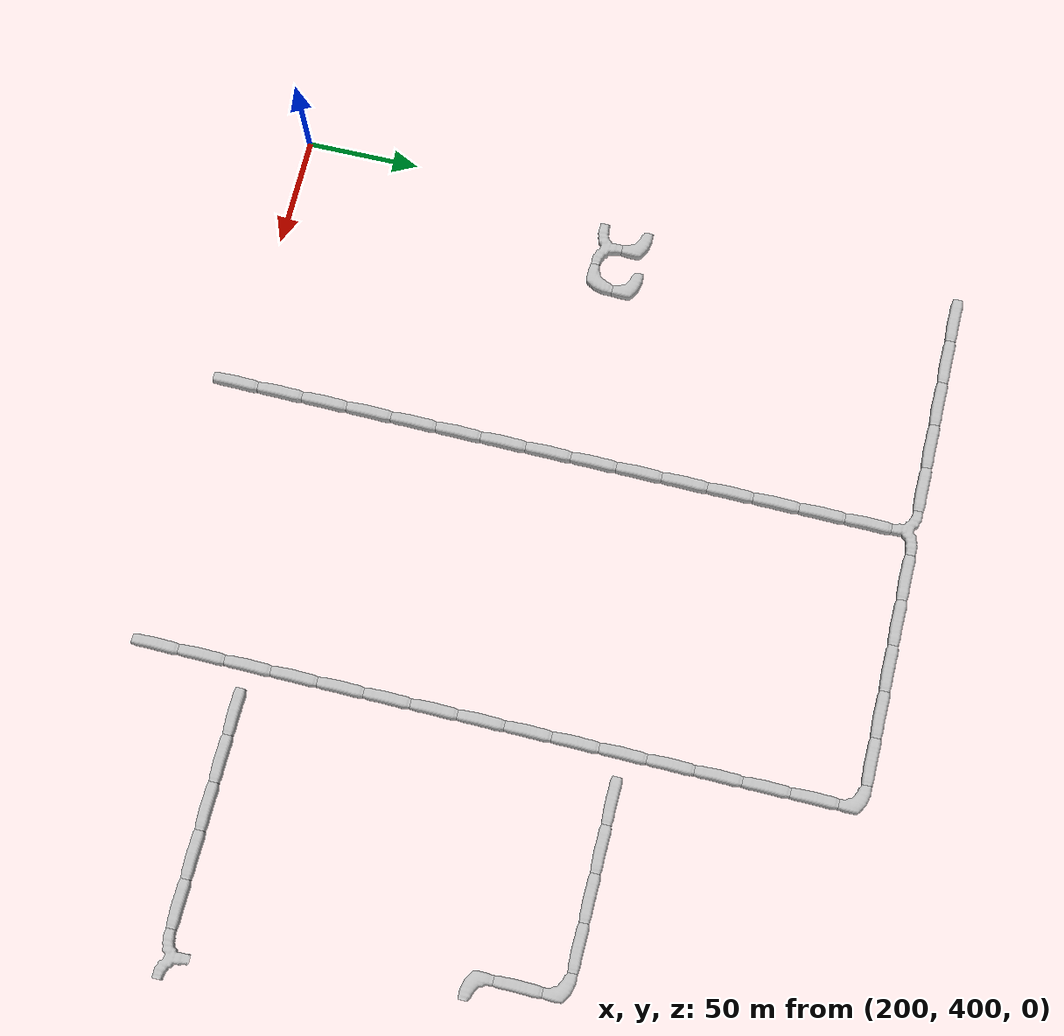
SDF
<sdf version="1.6">
 <world name="cave_32000_8">
  <include>
   <static>true</static>
   <name>cave_28_22</name>
   <pose>560 440 0 0 0 0.0</pose>
   <uri>model://cave_3way_20m</uri>
  </include>
  <include>
   <static>true</static>
   <name>cave_27_22</name>
   <pose>540 440 0 0 0 1.5707963267948966</pose>
   <uri>model://cave_straight_20m</uri>
  </include>
  <include>
   <static>true</static>
   <name>cave_26_22</name>
   <pose>520 440 0 0 0 1.5707963267948966</pose>
   <uri>model://cave_straight_20m</uri>
  </include>
  <include>
   <static>true</static>
   <name>cave_25_22</name>
   <pose>500 440 0 0 0 1.5707963267948966</pose>
   <uri>model://cave_straight_20m</uri>
  </include>
  <include>
   <static>true</static>
   <name>cave_24_22</name>
   <pose>480 440 0 0 0 1.5707963267948966</pose>
   <uri>model://cave_straight_20m</uri>
  </include>
  <include>
   <static>true</static>
   <name>cave_23_22</name>
   <pose>460 440 0 0 0 1.5707963267948966</pose>
   <uri>model://cave_straight_20m</uri>
  </include>
  <include>
   <static>true</static>
   <name>cave_27_28</name>
   <pose>540 560 0 0 0 0.0</pose>
   <uri>model://cave_L_20m</uri>
  </include>
  <include>
   <static>true</static>
   <name>cave_27_29</name>
   <pose>540 580 0 0 0 0.0</pose>
   <uri>model://cave_straight_20m</uri>
  </include>
  <include>
   <static>true</static>
   <name>cave_27_30</name>
   <pose>540 600 0 0 0 3.141592653589793</pose>
   <uri>model://cave_L_20m</uri>
  </include>
  <include>
   <static>true</static>
   <name>cave_26_30</name>
   <pose>520 600 0 0 0 1.5707963267948966</pose>
   <uri>model://cave_straight_20m</uri>
  </include>
  <include>
   <static>true</static>
   <name>cave_25_30</name>
   <pose>500 600 0 0 0 1.5707963267948966</pose>
   <uri>model://cave_straight_20m</uri>
  </include>
  <include>
   <static>true</static>
   <name>cave_24_30</name>
   <pose>480 600 0 0 0 1.5707963267948966</pose>
   <uri>model://cave_straight_20m</uri>
  </include>
  <include>
   <static>true</static>
   <name>cave_23_30</name>
   <pose>460 600 0 0 0 1.5707963267948966</pose>
   <uri>model://cave_straight_20m</uri>
  </include>
  <include>
   <static>true</static>
   <name>cave_22_20</name>
   <pose>440 400 0 0 0 0.0</pose>
   <uri>model://cave_straight_20m</uri>
  </include>
  <include>
   <static>true</static>
   <name>cave_22_21</name>
   <pose>440 420 0 0 0 0.0</pose>
   <uri>model://cave_straight_20m</uri>
  </include>
  <include>
   <static>true</static>
   <name>cave_22_22</name>
   <pose>440 440 0 0 0 0.0</pose>
   <uri>model://cave_straight_20m</uri>
  </include>
  <include>
   <static>true</static>
   <name>cave_22_23</name>
   <pose>440 460 0 0 0 0.0</pose>
   <uri>model://cave_straight_20m</uri>
  </include>
  <include>
   <static>true</static>
   <name>cave_22_24</name>
   <pose>440 480 0 0 0 0.0</pose>
   <uri>model://cave_straight_20m</uri>
  </include>
  <include>
   <static>true</static>
   <name>cave_22_25</name>
   <pose>440 500 0 0 0 0.0</pose>
   <uri>model://cave_straight_20m</uri>
  </include>
  <include>
   <static>true</static>
   <name>cave_22_26</name>
   <pose>440 520 0 0 0 0.0</pose>
   <uri>model://cave_straight_20m</uri>
  </include>
  <include>
   <static>true</static>
   <name>cave_22_27</name>
   <pose>440 540 0 0 0 0.0</pose>
   <uri>model://cave_straight_20m</uri>
  </include>
  <include>
   <static>true</static>
   <name>cave_22_28</name>
   <pose>440 560 0 0 0 0.0</pose>
   <uri>model://cave_straight_20m</uri>
  </include>
  <include>
   <static>true</static>
   <name>cave_22_29</name>
   <pose>440 580 0 0 0 0.0</pose>
   <uri>model://cave_straight_20m</uri>
  </include>
  <include>
   <static>true</static>
   <name>cave_22_30</name>
   <pose>440 600 0 0 0 0.0</pose>
   <uri>model://cave_straight_20m</uri>
  </include>
  <include>
   <static>true</static>
   <name>cave_22_31</name>
   <pose>440 620 0 0 0 0.0</pose>
   <uri>model://cave_straight_20m</uri>
  </include>
  <include>
   <static>true</static>
   <name>cave_22_32</name>
   <pose>440 640 0 0 0 0.0</pose>
   <uri>model://cave_straight_20m</uri>
  </include>
  <include>
   <static>true</static>
   <name>cave_22_33</name>
   <pose>440 660 0 0 0 0.0</pose>
   <uri>model://cave_straight_20m</uri>
  </include>
  <include>
   <static>true</static>
   <name>cave_22_34</name>
   <pose>440 680 0 0 0 0.0</pose>
   <uri>model://cave_straight_20m</uri>
  </include>
  <include>
   <static>true</static>
   <name>cave_22_35</name>
   <pose>440 700 0 0 0 3.141592653589793</pose>
   <uri>model://cave_L_20m</uri>
  </include>
  <include>
   <static>true</static>
   <name>cave_21_35</name>
   <pose>420 700 0 0 0 1.5707963267948966</pose>
   <uri>model://cave_straight_20m</uri>
  </include>
  <include>
   <static>true</static>
   <name>cave_20_35</name>
   <pose>400 700 0 0 0 1.5707963267948966</pose>
   <uri>model://cave_straight_20m</uri>
  </include>
  <include>
   <static>true</static>
   <name>cave_19_35</name>
   <pose>380 700 0 0 0 1.5707963267948966</pose>
   <uri>model://cave_straight_20m</uri>
  </include>
  <include>
   <static>true</static>
   <name>cave_18_35</name>
   <pose>360 700 0 0 0 1.5707963267948966</pose>
   <uri>model://cave_straight_20m</uri>
  </include>
  <include>
   <static>true</static>
   <name>cave_17_35</name>
   <pose>340 700 0 0 0 1.5707963267948966</pose>
   <uri>model://cave_straight_20m</uri>
  </include>
  <include>
   <static>true</static>
   <name>cave_16_35</name>
   <pose>320 700 0 0 0 3.141592653589793</pose>
   <uri>model://cave_3way_20m</uri>
  </include>
  <include>
   <static>true</static>
   <name>cave_16_34</name>
   <pose>320 680 0 0 0 0.0</pose>
   <uri>model://cave_straight_20m</uri>
  </include>
  <include>
   <static>true</static>
   <name>cave_16_33</name>
   <pose>320 660 0 0 0 0.0</pose>
   <uri>model://cave_straight_20m</uri>
  </include>
  <include>
   <static>true</static>
   <name>cave_16_32</name>
   <pose>320 640 0 0 0 0.0</pose>
   <uri>model://cave_straight_20m</uri>
  </include>
  <include>
   <static>true</static>
   <name>cave_16_31</name>
   <pose>320 620 0 0 0 0.0</pose>
   <uri>model://cave_straight_20m</uri>
  </include>
  <include>
   <static>true</static>
   <name>cave_16_30</name>
   <pose>320 600 0 0 0 0.0</pose>
   <uri>model://cave_straight_20m</uri>
  </include>
  <include>
   <static>true</static>
   <name>cave_16_29</name>
   <pose>320 580 0 0 0 0.0</pose>
   <uri>model://cave_straight_20m</uri>
  </include>
  <include>
   <static>true</static>
   <name>cave_16_28</name>
   <pose>320 560 0 0 0 0.0</pose>
   <uri>model://cave_straight_20m</uri>
  </include>
  <include>
   <static>true</static>
   <name>cave_16_27</name>
   <pose>320 540 0 0 0 0.0</pose>
   <uri>model://cave_straight_20m</uri>
  </include>
  <include>
   <static>true</static>
   <name>cave_16_26</name>
   <pose>320 520 0 0 0 0.0</pose>
   <uri>model://cave_straight_20m</uri>
  </include>
  <include>
   <static>true</static>
   <name>cave_16_25</name>
   <pose>320 500 0 0 0 0.0</pose>
   <uri>model://cave_straight_20m</uri>
  </include>
  <include>
   <static>true</static>
   <name>cave_16_24</name>
   <pose>320 480 0 0 0 0.0</pose>
   <uri>model://cave_straight_20m</uri>
  </include>
  <include>
   <static>true</static>
   <name>cave_16_23</name>
   <pose>320 460 0 0 0 0.0</pose>
   <uri>model://cave_straight_20m</uri>
  </include>
  <include>
   <static>true</static>
   <name>cave_16_22</name>
   <pose>320 440 0 0 0 0.0</pose>
   <uri>model://cave_straight_20m</uri>
  </include>
  <include>
   <static>true</static>
   <name>cave_16_21</name>
   <pose>320 420 0 0 0 0.0</pose>
   <uri>model://cave_straight_20m</uri>
  </include>
  <include>
   <static>true</static>
   <name>cave_16_20</name>
   <pose>320 400 0 0 0 0.0</pose>
   <uri>model://cave_straight_20m</uri>
  </include>
  <include>
   <static>true</static>
   <name>cave_15_35</name>
   <pose>300 700 0 0 0 1.5707963267948966</pose>
   <uri>model://cave_straight_20m</uri>
  </include>
  <include>
   <static>true</static>
   <name>cave_14_35</name>
   <pose>280 700 0 0 0 1.5707963267948966</pose>
   <uri>model://cave_straight_20m</uri>
  </include>
  <include>
   <static>true</static>
   <name>cave_13_35</name>
   <pose>260 700 0 0 0 1.5707963267948966</pose>
   <uri>model://cave_straight_20m</uri>
  </include>
  <include>
   <static>true</static>
   <name>cave_12_35</name>
   <pose>240 700 0 0 0 1.5707963267948966</pose>
   <uri>model://cave_straight_20m</uri>
  </include>
  <include>
   <static>true</static>
   <name>cave_11_35</name>
   <pose>220 700 0 0 0 1.5707963267948966</pose>
   <uri>model://cave_straight_20m</uri>
  </include>
  <include>
   <static>true</static>
   <name>cave_11_27</name>
   <pose>220 540 0 0 0 0.0</pose>
   <uri>model://cave_3way_20m</uri>
  </include>
  <include>
   <static>true</static>
   <name>cave_12_27</name>
   <pose>240 540 0 0 0 1.5707963267948966</pose>
   <uri>model://cave_L_20m</uri>
  </include>
  <include>
   <static>true</static>
   <name>cave_12_28</name>
   <pose>240 560 0 0 0 3.141592653589793</pose>
   <uri>model://cave_L_20m</uri>
  </include>
  <include>
   <static>true</static>
   <name>cave_11_28</name>
   <pose>220 560 0 0 0 3.141592653589793</pose>
   <uri>model://cave_L_20m</uri>
  </include>
 </world>
</sdf>
